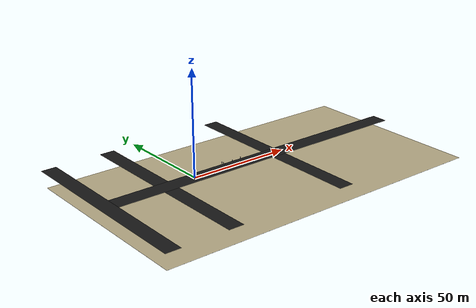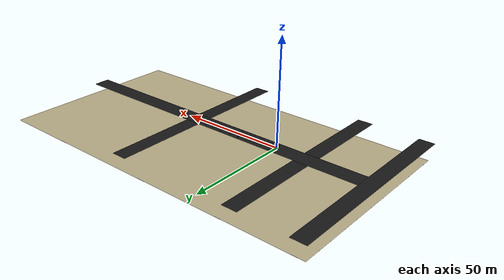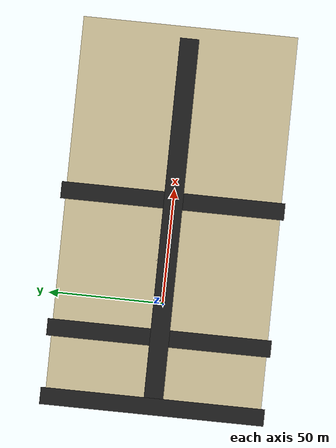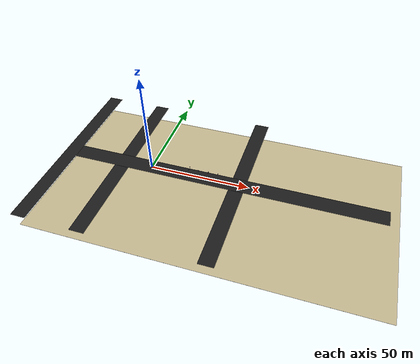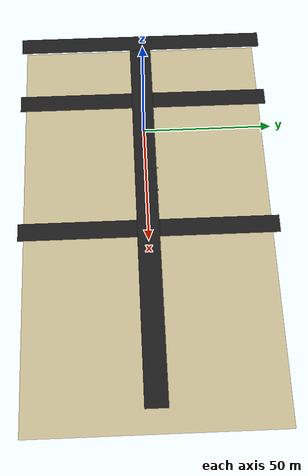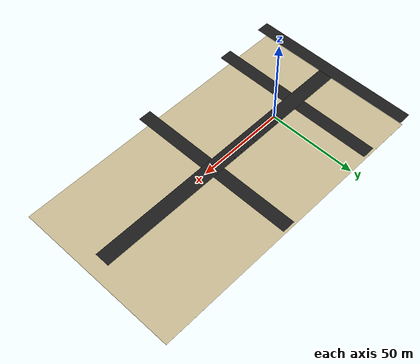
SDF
<sdf version="1.6">
 <world name="default">
  <scene>
   <grid>false</grid>
   <origin_visual>false</origin_visual>
   <ambient>0.85 0.85 0.85 1</ambient>
   <sky><clouds><speed>12</speed></clouds></sky>
   <background>0.35 0.35 0.35 1.0</background>
  </scene>
  <physics name="1ms" type="ignored">
   <max_step_size>0.001</max_step_size>
   <real_time_factor>0.25</real_time_factor>
   <real_time_update_rate>250</real_time_update_rate>
  </physics>
  <gravity>0 0 -9.8</gravity>
  <magnetic_field>5.5645e-06 2.28758e-05 -4.23884e-05</magnetic_field>
  <atmosphere type="adiabatic"/>
  <plugin name="gz::sim::systems::Physics" filename="gz-sim-physics-system"/>
  <plugin name="gz::sim::systems::UserCommands" filename="gz-sim-user-commands-system"/>
  <plugin name="gz::sim::systems::SceneBroadcaster" filename="gz-sim-scene-broadcaster-system"/>
  <plugin name="gz::sim::systems::Contact" filename="gz-sim-contact-system"/>
  <plugin name="gz::sim::systems::Sensors" filename="gz-sim-sensors-system">
   <render_engine>ogre2</render_engine>
  </plugin>
  <plugin name="go2_simulation::ActorPosePublisher" filename="ActorPosePublisher">
   <topic>/world/default/actor_pose/info</topic>
   <update_rate>50</update_rate>
   <frame_id>world</frame_id>
   <model_name>go2</model_name>
  </plugin>
  <light type="directional" name="sun">
   <pose>0 0 1000 0 0 0</pose>
   <diffuse>0.8 0.8 0.8 1</diffuse>
   <specular>0.5 0.5 0.5 1</specular>
   <attenuation>
    <range>1000</range>
    <constant>0.9</constant>
    <linear>0.01</linear>
    <quadratic>0.001</quadratic>
   </attenuation>
   <direction>-0.5 0.1 -0.4</direction>
  </light>
  <model name="ground_plane">
   <static>true</static>
   <link name="link">
    <collision name="collision">
     <geometry><plane><normal>0 0 1</normal><size>100 100</size></plane></geometry>
    </collision>
    <pose>0 0 -1 0 0 0</pose>
   </link>
  </model>
  <model name="city_base_plane">
   <static>true</static>
   <pose>37.5 0 -8 0 0 0</pose>
   <link name="link">
    <visual name="visual">
     <cast_shadows>false</cast_shadows>
     <geometry><box><size>170 95 0.01</size></box></geometry>
     <material>
      <ambient>0.75 0.70 0.55 1</ambient>
      <diffuse>0.75 0.70 0.55 1</diffuse>
      <specular>0.05 0.05 0.05 1</specular>
     </material>
    </visual>
    <collision name="collision">
     <geometry><box><size>170 95 0.01</size></box></geometry>
     <surface><friction><ode><mu>0.8</mu><mu2>0.8</mu2></ode></friction></surface>
    </collision>
   </link>
  </model>
  <model name="road_y_1">
   <static>true</static>
   <pose>-45 0.25 0.01 0 0 1.570796</pose>
   <link name="link">
    <collision name="collision">
     <geometry><box><size>97.9 7.4 0.02</size></box></geometry>
     <surface><friction><ode><mu>1.0</mu><mu2>1.0</mu2></ode></friction></surface>
    </collision>
    <visual name="visual">
     <cast_shadows>false</cast_shadows>
     <geometry><box><size>97.9 7.4 0.02</size></box></geometry>
     <material>
      <ambient>0.10 0.10 0.10 1</ambient>
      <diffuse>0.10 0.10 0.10 1</diffuse>
      <specular>0.02 0.02 0.02 1</specular>
     </material>
    </visual>
   </link>
  </model>
  <model name="road_y_2">
   <static>true</static>
   <pose>-15 0.25 0.01 0 0 1.570796</pose>
   <link name="link">
    <collision name="collision">
     <geometry><box><size>97.9 7.4 0.02</size></box></geometry>
     <surface><friction><ode><mu>1.0</mu><mu2>1.0</mu2></ode></friction></surface>
    </collision>
    <visual name="visual">
     <cast_shadows>false</cast_shadows>
     <geometry><box><size>97.9 7.4 0.02</size></box></geometry>
     <material>
      <ambient>0.10 0.10 0.10 1</ambient>
      <diffuse>0.10 0.10 0.10 1</diffuse>
      <specular>0.02 0.02 0.02 1</specular>
     </material>
    </visual>
   </link>
  </model>
  <model name="road_y_3">
   <static>true</static>
   <pose>45 0.25 0.01 0 0 1.570796</pose>
   <link name="link">
    <collision name="collision">
     <geometry><box><size>97.9 7.4 0.02</size></box></geometry>
     <surface><friction><ode><mu>1.0</mu><mu2>1.0</mu2></ode></friction></surface>
    </collision>
    <visual name="visual">
     <cast_shadows>false</cast_shadows>
     <geometry><box><size>97.9 7.4 0.02</size></box></geometry>
     <material>
      <ambient>0.10 0.10 0.10 1</ambient>
      <diffuse>0.10 0.10 0.10 1</diffuse>
      <specular>0.02 0.02 0.02 1</specular>
     </material>
    </visual>
   </link>
  </model>
  <model name="road_x_2">
   <static>true</static>
   <pose>37.5 0 0.015 0 0 0</pose>
   <link name="link">
    <collision name="collision">
     <geometry><box><size>157.6 8.4 0.02</size></box></geometry>
     <surface><friction><ode><mu>1.0</mu><mu2>1.0</mu2></ode></friction></surface>
    </collision>
    <visual name="visual">
     <cast_shadows>false</cast_shadows>
     <geometry><box><size>157.6 8.4 0.02</size></box></geometry>
     <material>
      <ambient>0.10 0.10 0.10 1</ambient>
      <diffuse>0.10 0.10 0.10 1</diffuse>
      <specular>0.02 0.02 0.02 1</specular>
     </material>
    </visual>
   </link>
  </model>
  <model name="sidewalk_16_raised_collision_test">
   <static>true</static>
   <pose>15.000000 4.2 0.160000 0 0 0</pose>
   <link name="link">
    <collision name="collision">
     <geometry><box><size>52.600000 5.0 0.01</size></box></geometry>
     <surface><friction><ode><mu>0.8</mu><mu2>0.8</mu2></ode></friction></surface>
    </collision>
   </link>
  </model>
  <include><name>w5_s1_bollard_1</name><pose>18.5 2.00 0.15 0 0 0</pose><uri>model://bollard</uri></include>
  <include><name>w5_s1_bollard_2</name><pose>18.5 2.55 0.15 0 0 0</pose><uri>model://bollard</uri></include>
  <include><name>w5_s1_bollard_3</name><pose>18.5 3.10 0.15 0 0 0</pose><uri>model://bollard</uri></include>
  <include><name>w5_s1_bollard_4</name><pose>18.5 3.65 0.15 0 0 0</pose><uri>model://bollard</uri></include>
  <include><name>w5_s1_bollard_5</name><pose>18.5 4.20 0.15 0 0 0</pose><uri>model://bollard</uri></include>
  <include><name>w5_s1_bollard_6</name><pose>18.5 4.75 0.15 0 0 0</pose><uri>model://bollard</uri></include>
  <include><name>w5_s2_bollard_1</name><pose>23.5 3.40 0.15 0 0 0</pose><uri>model://bollard</uri></include>
  <include><name>w5_s3_bollard_1</name><pose>28.5 3.40 0.15 0 0 0</pose><uri>model://bollard</uri></include>
  <include><name>w5_s3_bollard_2</name><pose>28.5 3.95 0.15 0 0 0</pose><uri>model://bollard</uri></include>
  <include><name>w5_s3_bollard_3</name><pose>28.5 4.50 0.15 0 0 0</pose><uri>model://bollard</uri></include>
  <include><name>w5_s4_bollard_1</name><pose>33.5 4.05 0.15 0 0 0</pose><uri>model://bollard</uri></include>
  <include><name>w5_s4_bollard_2</name><pose>33.5 3.60 0.15 0 0 0</pose><uri>model://bollard</uri></include>
  <include><name>w5_s5_bollard_1</name><pose>38.0 3.30 0.15 0 0 0</pose><uri>model://bollard</uri></include>
 </world>
</sdf>

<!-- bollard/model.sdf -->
<sdf version="1.6">
  <model name="bollard">
    <static>true</static>
    <link name="link">
      <collision name="collision">
        <pose>0 0 0.45 0 0 0</pose>
        <geometry>
          <cylinder>
            <radius>0.06</radius>
            <length>0.9</length>
          </cylinder>
        </geometry>
      </collision>
      <visual name="visual">
        <pose>0 0 0.45 0 0 0</pose>
        <geometry>
          <cylinder>
            <radius>0.06</radius>
            <length>0.9</length>
          </cylinder>
        </geometry>
        <material>
          <ambient>0.18 0.18 0.20 1</ambient>
          <diffuse>0.25 0.25 0.28 1</diffuse>
          <specular>0.10 0.10 0.10 1</specular>
        </material>
      </visual>
    </link>
  </model>
</sdf>
